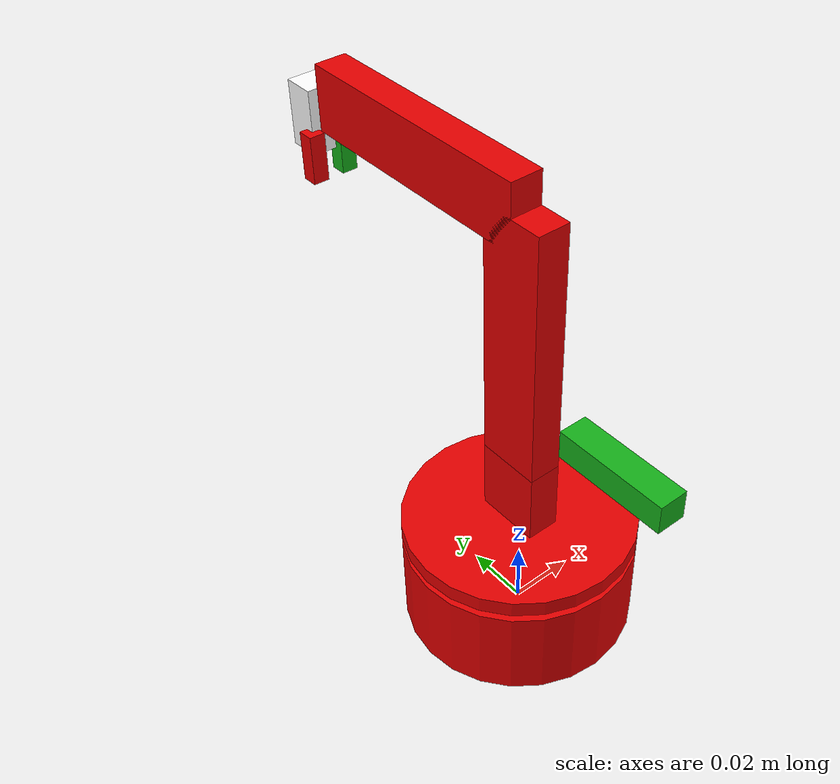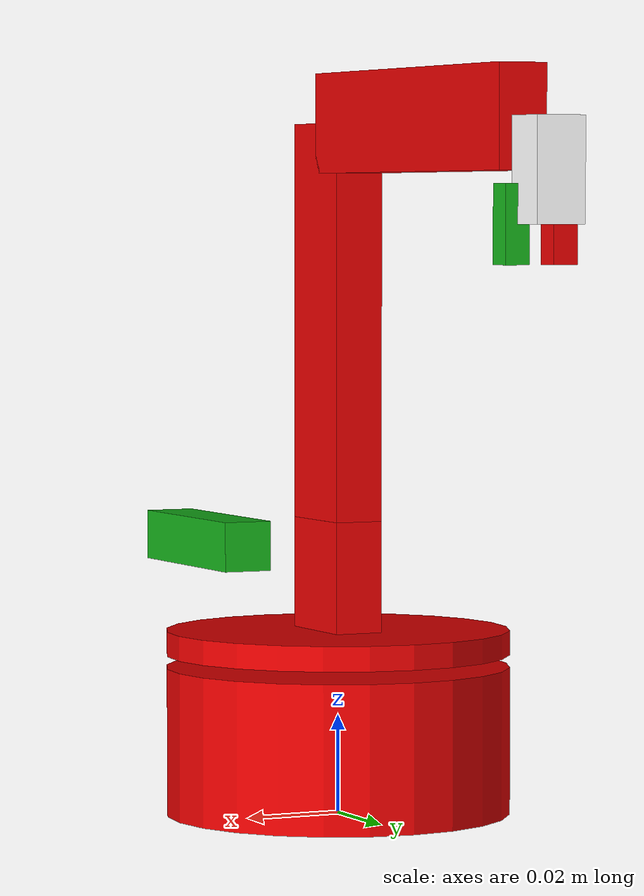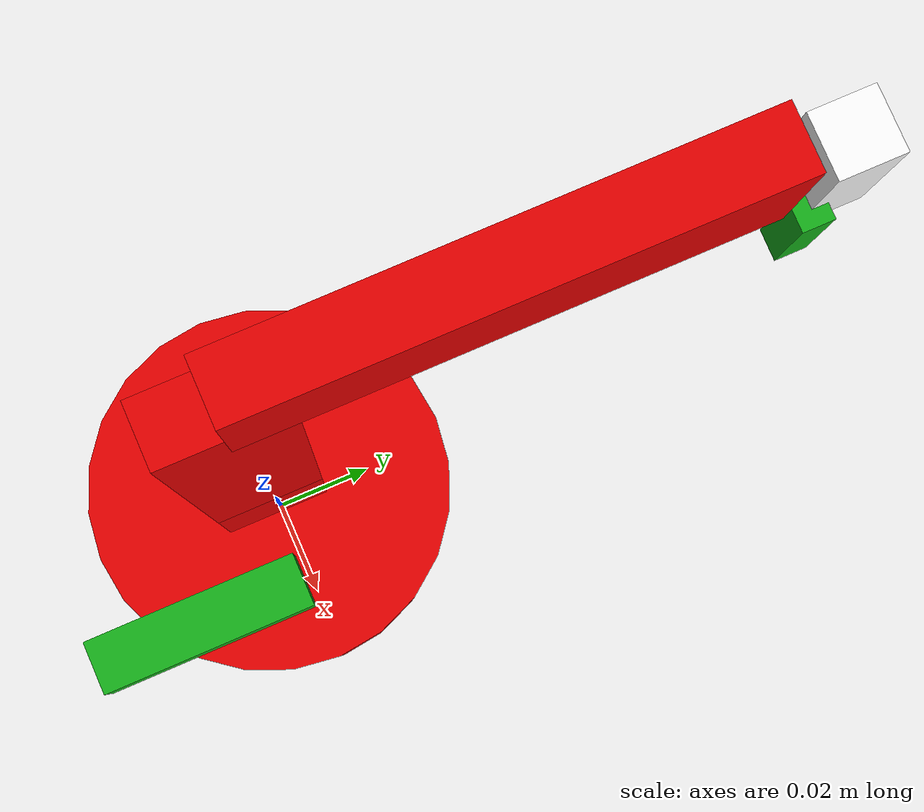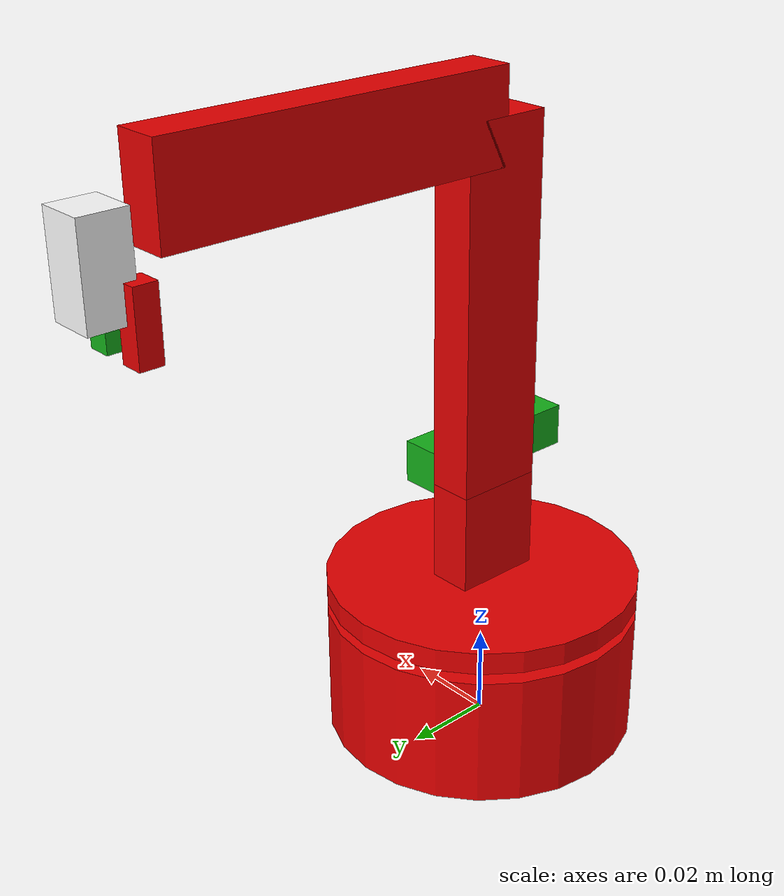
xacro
<?xml version="1.0"?>
<robot xmlns:xacro="http://www.ros.org/wiki/xacro" name="mercerbot">
    <!-- Useful XACRO Variables (Properties) -->
    <xacro:property name="PI" value="3.14159265359" />
    <xacro:property name="effort" value="30.0" />
    <xacro:property name="velocity" value="10.0" />

  <!-- Include ros2_control Plugins -->
    <xacro:include filename="$(find arduinobot_description)/urdf/arduinobot_ros2_control.xacro" />

  <!-- Include Color Parameters -->
  <xacro:include filename="$(find mercerbot_description)/urdf/xkcd_colors.urdf.xacro" />

  <!-- Links                     -->
  <link name="world"/>
  <!-- Base -->
  <link name="base_link">
    <visual>
      <origin xyz="0 0 0.015" rpy="0 0 0"/>
      <geometry>
        <cylinder radius="0.035" length="0.03"/>
      </geometry>
      <material name="red"/>
    </visual>
  </link>

  <link name="base_plate">
    <visual>
      <origin xyz="0 0 0" rpy="0 0 0"/>
      <geometry>
        <cylinder radius="0.035" length="0.005"/>
      </geometry>
      <material name="red"/>
    </visual>
    <visual>
    <origin xyz="0.0 0 0.0125" rpy="0 0 0"/>
    <geometry>
      <box size="0.01 0.02 0.025"/>
    </geometry>
    <material name="red"/>
    </visual>
  </link>

  <!-- Shoulder link -->
  <link name="shoulder_link">
    <visual>
      <origin xyz="0 0 0.04" rpy="0 0 0"/>
      <geometry>
        <box size="0.01 0.02 0.08"/>
      </geometry>
      <material name="red" />
    </visual>
  </link>

  <!-- Elbow link -->
  <link name="elbow_link_corrected">
    <visual>
      <origin xyz="0 0 0.04" rpy="0 0 0"/>
      <geometry>
        <box size="0.01 0.02 0.08"/>
      </geometry>
      <material name="red"/>
    </visual>
  </link>

   <!-- Elbow link -->
  <link name="elbow_link_actual">
    <visual>
      <origin xyz="0.02 0 0.02" rpy="0 0 0"/>
      <geometry>
        <box size="0.01 0.01 0.04"/>
      </geometry>
      <material name="green"/>
    </visual>
  </link>

   <link name="claw_support">
      <visual>
          <origin rpy="0 0 0" xyz="0 0 0"/>
          <geometry>
              <box size="0.01 0.02 0.01"/>
          </geometry>
        <material name="white"/>
      </visual>

    </link>
    <link name="gripper_right">

          <visual>
              <origin rpy="${PI/2} 0 0" xyz="0 0 0"/>
              <geometry>
                  <box size="0.005 0.005 0.015"/>
              </geometry>
              <material name="red"/>
          </visual>

      </link>

      <link name="gripper_left">

          <visual>
              <origin rpy="${PI/2} 0 0" xyz="0 0 0"/>
              <geometry>
                  <box size="0.005 0.005 0.015"/>
              </geometry>
              <material name="green"/>
          </visual>

      </link>
  <!-- Joints                   -->

  <joint name="virtual_joint" type="fixed">
        <parent link="world"/>
        <child link="base_link"/>
        <origin xyz="0 0 0" rpy="0 0 0"/>
    </joint>

    <joint name ="joint_1" type="revolute">
        <parent link="base_link"/>
        <child link = "base_plate"/>
        <origin xyz="0 0 0.035"/>
        <axis xyz="0 0 1"/>
        <limit lower="-${PI / 2}" upper="${PI / 2}"
               effort="${effort}" velocity="${velocity}"/>
    </joint>

    <joint name ="joint_2" type="revolute">
        <parent link="base_plate"/>
        <child link = "shoulder_link"/>
        <origin xyz="0 0 0.025"/>
        <axis xyz="1 0 0"/>
        <limit lower="-${PI / 2}" upper="${PI / 2}"
                effort="${effort}" velocity="${velocity}"/>
    </joint>

    <joint name ="joint_3_corrected" type="revolute">
        <parent link="shoulder_link"/>
        <child link = "elbow_link_corrected"/>
        <origin xyz="0 0 0.08" rpy="-${PI/2} 0 0"/>
        <axis xyz="1 0 0"/>
        <limit lower="-${PI / 2}" upper="${PI / 2}"
               effort="${effort}" velocity="${velocity}"/>
    </joint>

    <joint name ="joint_3" type="revolute">
        <parent link="base_plate"/>
        <child link = "elbow_link_actual"/>
        <origin xyz="0 0 0.02" rpy="${PI/2} 0 0"/>
        <axis xyz="1 0 0"/>
        <limit lower="-${PI / 2}" upper="${PI / 2}"
               effort="${effort}" velocity="${velocity}"/>
    </joint>

    <joint name ="joint_claw_support_corrected" type="revolute">
        <parent link="elbow_link_corrected"/>
        <child link = "claw_support"/>
        <origin xyz="0 0.01 0.09" rpy="${PI} 0 0"/>
        <axis xyz="1 0 0"/>
        <limit lower="-${PI / 2}" upper="${PI / 2}"
               effort="${effort}" velocity="${velocity}"/>
    </joint>
    <joint name ="joint_4" type="revolute">
          <parent link="claw_support"/>
          <child link = "gripper_right"/>
          <origin xyz="-0.005 -0.01 0.005" rpy="0 0 0"/>
          <axis xyz="0 0 1"/>
          <limit lower="-${PI / 2}" upper="0.0"
                effort="${effort}" velocity="${velocity}"/>
      </joint>
      <joint name ="joint_5" type="revolute">
          <parent link="claw_support"/>
          <child link = "gripper_left"/>
          <origin xyz="0.005 -0.01 0.005" rpy="0 0 0"/>
          <axis xyz="0 0 1"/>
          <limit lower="0.0" upper="${PI / 2}"
                effort="${effort}" velocity="${velocity}"/>
          <mimic joint="joint_4" multiplier="-1.0" offset="0.0"/>
      </joint>
</robot>
